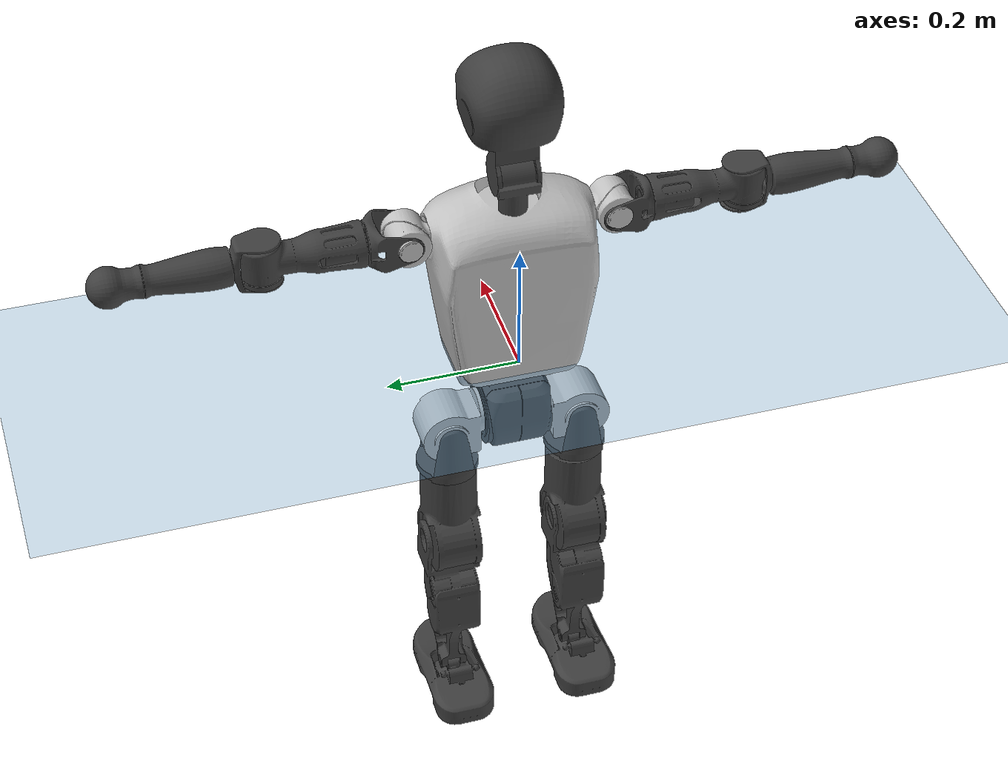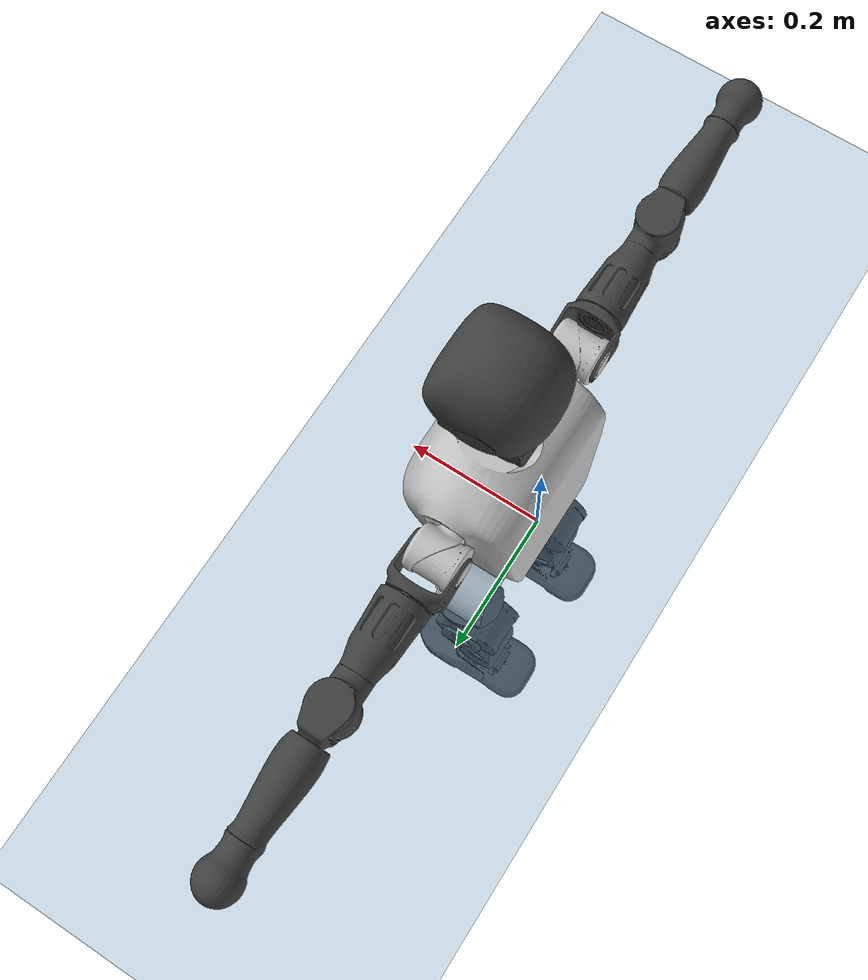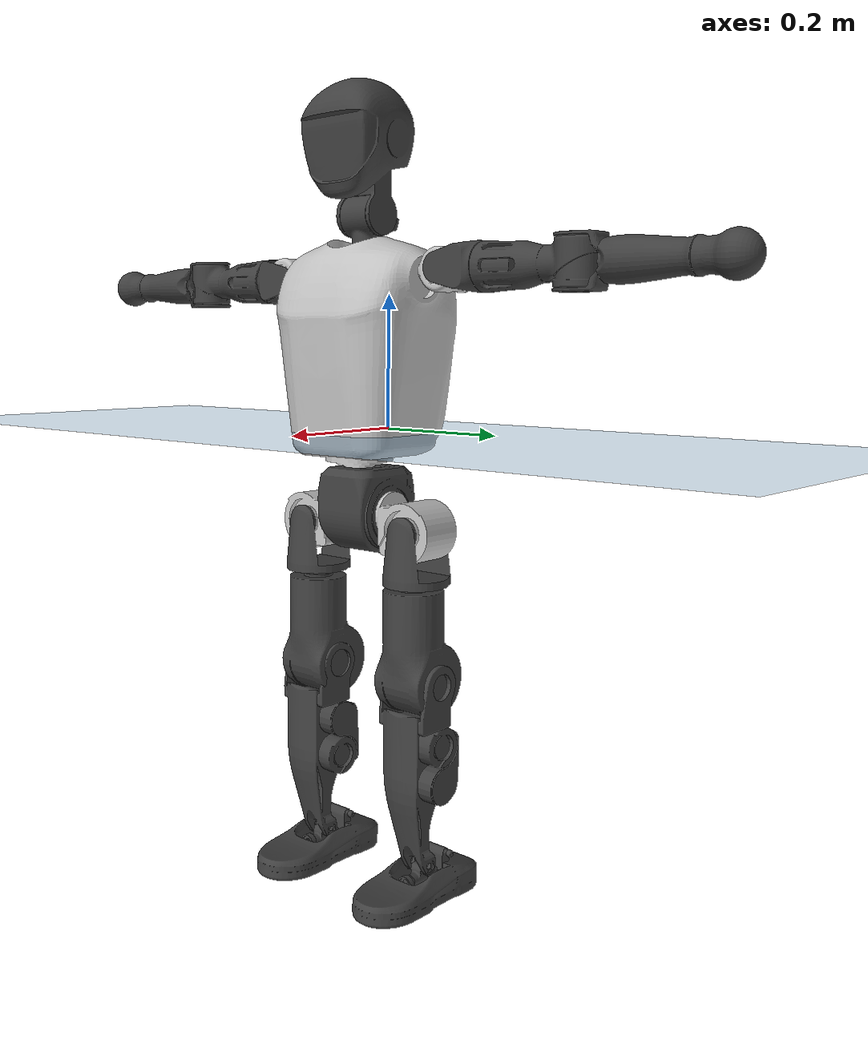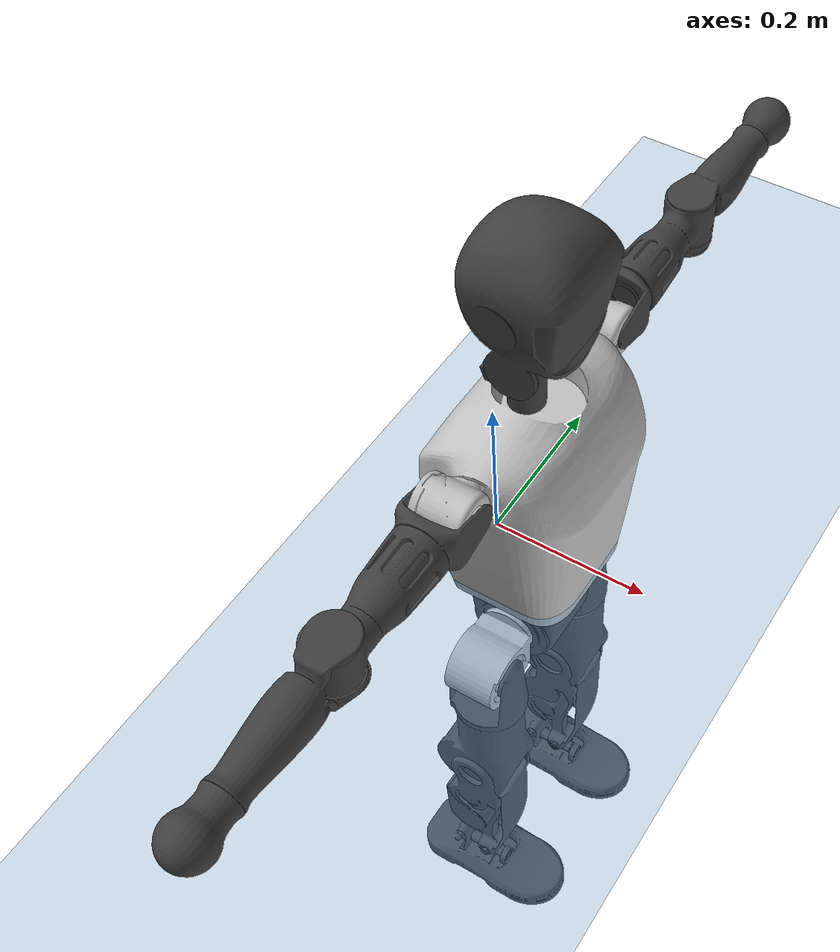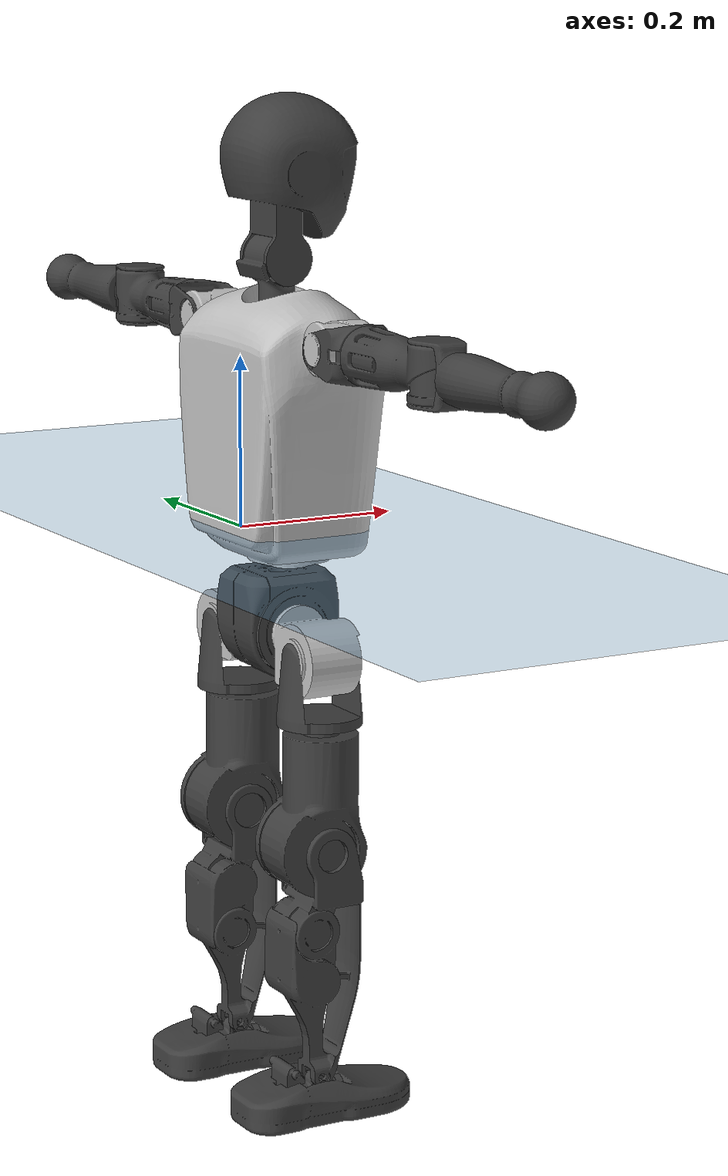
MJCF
<mujoco model="T1">
  <compiler angle="radian" assetdir="assets" balanceinertia="true" inertiafromgeom="false"/>

  <option timestep="0.005" density="1.2" viscosity="2e-05"/>

  <size nkey="1"/>

  <visual>
    <quality shadowsize="8192"/>
    <map shadowclip="0.5"/>
  </visual>

  <default>
    <default class="/">
      <joint armature="0.01" damping="0.01" frictionloss="0.1"/>
      <geom contype="0" conaffinity="0" group="1" solref="-1000 -80"/>
      <site size="0.01 0.005 0.005" group="5"/>
      <general forcelimited="true" biastype="affine" gainprm="25" biasprm="0 -25 -0.6"/>
      <default class="t1">
        <geom rgba="0.25 0.25 0.25 1"/>
        <default class="visual">
          <geom type="mesh" group="2"/>
        </default>
        <default class="collision">
          <geom group="3"/>
        </default>
        <default class="foot">
          <geom size="0.1115 0.05 0.015" type="box" condim="6" group="4" priority="1" solimp="0.015 1 0.015"/>
        </default>
        <default class="reward_collision_sphere">
          <geom group="5" rgba="1 0 0 1"/>
        </default>
      </default>
    </default>
  </default>

  <asset>
    <texture type="skybox" colorspace="auto" name="//unnamed_texture_0" builtin="gradient" rgb1="0.95 0.95 0.95" rgb2="0.95 0.95 0.95" width="100" height="600"/>
    <texture type="2d" colorspace="auto" name="texplane" builtin="checker" rgb1="0.345 0.575 0.748" rgb2="0.345 0.575 0.748" markrgb="1 1 1" width="512" height="512"/>
    <material name="MatPlane" class="/" texture="texplane" texuniform="true" texrepeat="2 2" specular="0.9"/>
    <mesh name="Trunk" class="/" file="Trunk.stl"/>
    <mesh name="H1" class="/" file="H1.stl"/>
    <mesh name="H2" class="/" file="H2.stl"/>
    <mesh name="AL1" class="/" file="AL1.stl"/>
    <mesh name="AL2" class="/" file="AL2.stl"/>
    <mesh name="AL3" class="/" file="AL3.stl"/>
    <mesh name="left_hand_link" class="/" file="left_hand_link.stl"/>
    <mesh name="AR1" class="/" file="AR1.stl"/>
    <mesh name="AR2" class="/" file="AR2.stl"/>
    <mesh name="AR3" class="/" file="AR3.stl"/>
    <mesh name="right_hand_link" class="/" file="right_hand_link.stl"/>
    <mesh name="Waist" class="/" file="Waist.stl"/>
    <mesh name="Hip_Pitch_Left" class="/" file="Hip_Pitch_Left.stl"/>
    <mesh name="Hip_Roll_Left" class="/" file="Hip_Roll_Left.stl"/>
    <mesh name="Hip_Yaw_Left" class="/" file="Hip_Yaw_Left.stl"/>
    <mesh name="Shank_Left" class="/" file="Shank_Left.stl"/>
    <mesh name="Ankle_Cross_Left" class="/" file="Ankle_Cross_Left.stl"/>
    <mesh name="left_foot_link" class="/" file="left_foot_link.stl"/>
    <mesh name="Hip_Pitch_Right" class="/" file="Hip_Pitch_Right.stl"/>
    <mesh name="Hip_Roll_Right" class="/" file="Hip_Roll_Right.stl"/>
    <mesh name="Hip_Yaw_Right" class="/" file="Hip_Yaw_Right.stl"/>
    <mesh name="Shank_Right" class="/" file="Shank_Right.stl"/>
    <mesh name="Ankle_Cross_Right" class="/" file="Ankle_Cross_Right.stl"/>
    <mesh name="right_foot_link" class="/" file="right_foot_link.stl"/>
  </asset>

  <worldbody>
    <geom name="floor" class="/" size="100 100 0.125" type="plane" group="0" material="MatPlane"/>
    <light name="toplight_shadow" class="/" pos="0 0 5" dir="0.0990148 0.0990148 -0.990148" type="directional" ambient="0.04 0.04 0.04" diffuse="0.55 0.55 0.55" specular="0.12 0.12 0.12"/>
    <light name="toplight_fill" class="/" pos="0 0 5" dir="0.0990148 0.0990148 -0.990148" type="directional" castshadow="false" ambient="0.04 0.04 0.04" diffuse="0.3 0.3 0.3" specular="0.08 0.08 0.08"/>
    <body name="trunk" childclass="t1" pos="0.00221655 -0.000169411 -0.000554736" quat="1 8.92528e-05 -0.000199317 -0.00047955">
      <inertial pos="0.040169 -0.000413606 0.107616" quat="0.999959 -2.36646e-05 -0.00903737 -0.000242096" mass="9.46257" diaginertia="0.0206485 0.0686493 0.0670589"/>
      <joint name="//unnamed_joint_0" type="free" armature="0" damping="0" frictionloss="0"/>
      <geom name="//unnamed_geom_1" class="visual" rgba="0.76 0.76 0.76 1" mesh="Trunk"/>
      <geom name="//unnamed_geom_2" class="collision" size="0.0687782 0.0917043 0.137556" pos="0.0442262 0 0.124352" type="box"/>
      <geom name="//unnamed_geom_3" class="reward_collision_sphere" size="0.10546" pos="0.0442262 0 0.103626"/>
      <geom name="//unnamed_geom_4" class="reward_collision_sphere" size="0.0137556" pos="0.0442262 0.08311 0"/>
      <geom name="//unnamed_geom_5" class="reward_collision_sphere" size="0.0137556" pos="0.0442262 -0.08311 0"/>
      <geom name="//unnamed_geom_6" class="reward_collision_sphere" size="0.0137556" pos="0.0442262 0.104621 0.186527"/>
      <geom name="//unnamed_geom_7" class="reward_collision_sphere" size="0.0137556" pos="0.0442262 -0.104621 0.186527"/>
      <site name="imu" pos="-0.0133613 -0.00377069 0.0125118" size="0.00917043"/>
      <camera name="track" pos="0 -1.95553 0" quat="0.707107 0.707107 0 0" mode="trackcom"/>
      <camera name="ego_camera" pos="0.0899265 0 0.43523" quat="-0.5 -0.5 0.5 0.5"/>
      <body name="H1" pos="0.04343 -0.00284953 0.249237" quat="1 0.000121375 0.000266996 -0.000120491">
        <inertial pos="-0.00309819 -0.0023685 0.0583081" quat="0.758597 -0.00339675 0.00495276 0.651532" mass="0.351439" diaginertia="5.23835e-05 0.000192132 0.000176764"/>
        <joint name="AAHead_yaw" pos="0 0 0" axis="-0.0139999 -0.00136077 0.999901" range="-1.57338 1.56986" armature="0.0102954" damping="0.00535504" frictionloss="0.0990679"/>
        <geom name="//unnamed_geom_8" class="visual" mesh="H1"/>
        <body name="H2" pos="-0.00100671 -0.000582451 0.0635623" quat="0.999999 -0.000491619 -0.0012057 -0.000257609">
          <inertial pos="0.00461721 -0.00146244 0.101809" quat="0.988689 0.108102 -0.0727601 -0.0742605" mass="0.505961" diaginertia="0.00044278 0.00174158 0.00210834"/>
          <joint name="Head_pitch" pos="0 0 0" axis="9.30744e-05 -1 0.000531688" range="-1.2344 0.34981" armature="0.0101347" damping="0.00703876" frictionloss="0.0906096"/>
          <geom name="//unnamed_geom_9" class="visual" mesh="H2"/>
          <geom name="//unnamed_geom_10" class="collision" size="0.0733635" pos="0.00737103 0 0.113989"/>
          <geom name="//unnamed_geom_11" class="reward_collision_sphere" size="0.0825339" pos="0.0147421 0 0.103626"/>
        </body>
      </body>
      <body name="AL1" pos="0.0447793 0.107174 0.22908" quat="1 -2.88683e-06 0.000444802 -2.16142e-05">
        <inertial pos="-0.00293324 0.0465754 -0.00262092" quat="0.503653 0.493629 -0.506979 0.495617" mass="0.423598" diaginertia="0.000310646 0.00120438 0.000354502"/>
        <joint name="Left_Shoulder_Pitch" pos="0 0 0" axis="-0.00727728 0.999946 0.00740441" stiffness="0.0135528" range="-3.28711 1.21316" armature="0.0101185" damping="0.00839126" frictionloss="0.0809168"/>
        <geom name="//unnamed_geom_12" class="visual" rgba="0.76 0.76 0.76 1" mesh="AL1"/>
        <body name="AL2" pos="-0.000745914 0.0494908 0.00240275" quat="1 -3.10979e-05 -0.000272866 -0.000215245">
          <inertial pos="0.00298741 0.0377887 0.00129618" quat="0.487722 0.511956 -0.488135 0.511618" mass="0.123375" diaginertia="9.32035e-05 0.000328934 0.000212749"/>
          <joint name="Left_Shoulder_Roll" pos="0 0 0" axis="-0.999999 0.00116117 8.42773e-05" range="-1.5278 1.68349" armature="0.00915791" damping="0.0189544" frictionloss="0.0956484"/>
          <geom name="//unnamed_geom_13" class="visual" mesh="AL2"/>
          <body name="AL3" pos="0.00318893 0.0590692 -0.00113725" quat="0.999999 -0.000473927 0.00103898 0.000229146">
            <inertial pos="-0.00021132 0.0824705 0.00257415" quat="0.697313 0.716756 0.000570645 0.00402876" mass="0.791921" diaginertia="0.00287629 0.0113385 0.000736241"/>
            <joint name="Left_Elbow_Pitch" pos="0 0 0" axis="0.00501323 -0.999984 0.00258748" range="-2.26056 2.32243" armature="0.0078545" damping="0" frictionloss="0.0893428"/>
            <geom name="//unnamed_geom_14" class="visual" mesh="AL3"/>
            <geom name="//unnamed_geom_15" class="collision" size="0.0275113 0.0687782" pos="0 0.0488882 0" quat="0.707105 0.707108 0 0" type="cylinder"/>
            <geom name="//unnamed_geom_16" class="reward_collision_sphere" size="0.0330136"/>
            <body name="left_hand_link" pos="0.00125881 0.144399 0.000286679" quat="0.999999 0.000992252 -0.000512193 0.000679481">
              <inertial pos="0.00220004 0.104517 0.00156086" quat="0.707512 0.706701 0.000322055 0.000792851" mass="0.247902" diaginertia="0.00179184 0.00733489 0.000250784"/>
              <joint name="Left_Elbow_Yaw" pos="0 0 0" axis="-0.000269068 -0.00676597 0.999977" range="-2.41309 -0.0387512" armature="0.0104267" damping="0.0249478" frictionloss="0.103864"/>
              <geom name="//unnamed_geom_17" class="visual" mesh="left_hand_link"/>
              <geom name="//unnamed_geom_18" class="collision" size="0.0275113 0.0802413" pos="0 0.127109 0" quat="0.707105 0.707108 0 0" type="cylinder"/>
              <geom name="//unnamed_geom_19" class="reward_collision_sphere" size="0.0458522"/>
              <geom name="//unnamed_geom_20" class="reward_collision_sphere" size="0.0320965" pos="0 0.107554 0"/>
              <geom name="//unnamed_geom_21" class="reward_collision_sphere" size="0.0320965" pos="0 0.210219 0"/>
            </body>
          </body>
        </body>
      </body>
      <body name="AR1" pos="0.0428963 -0.105904 0.226297" quat="1 0.000568161 8.30621e-05 0.000710647">
        <inertial pos="0.000242388 -0.0444938 8.23573e-05" quat="0.504187 0.495489 -0.504327 0.495923" mass="0.413275" diaginertia="0.000298265 0.00115885 0.000350141"/>
        <joint name="Right_Shoulder_Pitch" pos="0 0 0" axis="0.00430307 -0.999991 -7.82787e-05" stiffness="0.0147609" range="-1.22767 3.30469" armature="0.010128" damping="0" frictionloss="0.0834623"/>
        <geom name="//unnamed_geom_22" class="visual" rgba="0.76 0.76 0.76 1" mesh="AR1"/>
        <body name="AR2" pos="0.000830635 -0.0439231 -0.00281496" quat="1 -0.000184304 0.00032922 0.000430092">
          <inertial pos="0.000924038 -0.0345035 -0.00249439" quat="0.51135 0.486598 -0.514239 0.487136" mass="0.12776" diaginertia="8.97577e-05 0.000307109 0.000218862"/>
          <joint name="Right_Shoulder_Roll" pos="0 0 0" axis="-0.999819 0.0186566 0.00378627" range="-1.69063 1.59146" armature="0.00957306" damping="0.0214343" frictionloss="0.0910105"/>
          <geom name="//unnamed_geom_23" class="visual" mesh="AR2"/>
          <body name="AR3" pos="0.00124991 -0.0573172 2.9951e-05" quat="1 6.79753e-05 2.19424e-05 -6.21512e-05">
            <inertial pos="-0.00302278 -0.0833467 -0.000441066" quat="0.713179 0.700982 0.000578195 0.000887039" mass="0.784008" diaginertia="0.0028313 0.0114587 0.000764954"/>
            <joint name="Right_Elbow_Pitch" pos="0 0 0" axis="0.00298581 0.999978 0.00597052" range="-2.26746 2.22395" armature="0.0091488" damping="0.0112179" frictionloss="0.0793324"/>
            <geom name="//unnamed_geom_24" class="visual" mesh="AR3"/>
            <geom name="//unnamed_geom_25" class="collision" size="0.0275113 0.0687782" pos="0 -0.0488882 0" quat="0.707105 0.707108 0 0" type="cylinder"/>
            <geom name="//unnamed_geom_26" class="reward_collision_sphere" size="0.0330136"/>
            <body name="right_hand_link" pos="0.00095326 -0.141829 -0.000869362" quat="1 0.000122471 3.70963e-05 -0.000113173">
              <inertial pos="0.000103962 -0.106017 0.0035361" quat="0.706821 0.707393 -0.000112289 0.00022399" mass="0.25386" diaginertia="0.00177767 0.00710585 0.000257055"/>
              <joint name="Right_Elbow_Yaw" pos="0 0 0" axis="0.00264234 0.00157042 0.999995" stiffness="0.0092581" range="0.0373709 2.43854" armature="0.00905742" damping="0.00104676" frictionloss="0.0790969"/>
              <geom name="//unnamed_geom_27" class="visual" mesh="right_hand_link"/>
              <geom name="//unnamed_geom_28" class="collision" size="0.0275113 0.0802413" pos="0 -0.127109 0" quat="0.707105 0.707108 0 0" type="cylinder"/>
              <geom name="//unnamed_geom_29" class="reward_collision_sphere" size="0.0458522"/>
              <geom name="//unnamed_geom_30" class="reward_collision_sphere" size="0.0320965" pos="0 -0.107554 0"/>
              <geom name="//unnamed_geom_31" class="reward_collision_sphere" size="0.0320965" pos="0 -0.210219 0"/>
            </body>
          </body>
        </body>
      </body>
      <body name="Waist" pos="0.0460443 -0.00107982 -0.119935" quat="1 0.000445897 -0.000258713 0.000374046">
        <inertial pos="0.00224963 -0.000514858 0.00754831" quat="0.982582 0.00606844 -0.18564 0.00582862" mass="1.93559" diaginertia="0.00120612 0.00469424 0.00585024"/>
        <joint name="Waist" pos="0 0 0" axis="0.00650696 -0.0131024 0.999893" stiffness="0.00183271" range="-1.60837 1.53252" armature="0.00927481" damping="0.0102465" frictionloss="0.079121"/>
        <geom name="//unnamed_geom_32" class="visual" mesh="Waist"/>
        <body name="Hip_Pitch_Left" pos="0.00101146 0.102194 -0.000147911" quat="1 5.621e-05 4.78615e-06 -0.000119974">
          <inertial pos="0.00130302 -0.0101372 -0.0188414" quat="0.975363 0.220436 0.00817789 0.00278136" mass="0.787014" diaginertia="0.000384797 0.00135206 0.00155368"/>
          <joint name="Left_Hip_Pitch" pos="0 0 0" axis="0.00642601 0.999979 -2.2593e-05" stiffness="0.00729116" range="-1.80075 1.57591" armature="0.0101264" damping="0.0228681" frictionloss="0.0909986"/>
          <geom name="//unnamed_geom_33" class="visual" rgba="0.76 0.76 0.76 1" mesh="Hip_Pitch_Left"/>
          <body name="Hip_Roll_Left" pos="0.0027568 -0.00144393 -0.0215397" quat="0.999999 0.000614228 0.00139036 -2.74618e-05">
            <inertial pos="0.00356317 0.000309027 -0.0553347" quat="0.707692 -0.00628046 -0.00705808 0.706458" mass="0.277723" diaginertia="0.000355842 0.00130743 0.000587263"/>
            <joint name="Left_Hip_Roll" pos="0 0 0" axis="-0.999893 0.0109085 -0.00976024" range="-1.51368 0.221" armature="0.00837345" damping="0.00032046" frictionloss="0.0890452"/>
            <geom name="//unnamed_geom_34" class="visual" mesh="Hip_Roll_Left"/>
            <geom name="//unnamed_geom_35" class="reward_collision_sphere" size="0.0504374"/>
            <body name="Hip_Yaw_Left" pos="0.00226987 -0.00199213 -0.0838625" quat="0.999999 -0.000323432 0.00139417 -0.000201666">
              <inertial pos="-0.00758958 9.96192e-05 -0.0925418" quat="0.694793 -0.0328359 -0.0333294 0.717686" mass="1.68652" diaginertia="0.00586518 0.0230281 0.00312767"/>
              <joint name="Left_Hip_Yaw" pos="0 0 0" axis="-0.00241757 -0.000927687 -0.999997" range="-0.953252 1.06364" armature="0.00914782" damping="0.00539378" frictionloss="0.104121"/>
              <geom name="//unnamed_geom_36" class="visual" mesh="Hip_Yaw_Left"/>
              <geom name="//unnamed_geom_37" class="collision" size="0.0458522 0.0733635" type="cylinder"/>
              <body name="Shank_Left" pos="-0.0110594 0.00240164 -0.139798" quat="1 2.17372e-05 -3.76154e-05 -7.31306e-05">
                <inertial pos="-0.00699743 0.000395378 -0.129084" quat="0.997864 -0.00808428 -0.0160595 0.0628047" mass="1.30884" diaginertia="0.00760205 0.0319294 0.00229667"/>
                <joint name="Left_Knee_Pitch" pos="0 0 0" axis="-0.0128295 0.999917 0.00133831" range="0.0117922 2.3926" armature="0.00802352" damping="0.00894216" frictionloss="0.103961"/>
                <geom name="//unnamed_geom_38" class="visual" mesh="Shank_Left"/>
                <geom name="//unnamed_geom_39" class="collision" size="0.0458522 0.0687782" pos="0 0 -0.124352" type="cylinder"/>
                <geom name="//unnamed_geom_40" class="reward_collision_sphere" size="0.0596078"/>
                <body name="Ankle_Cross_Left" pos="-0.000912272 -0.000395833 -0.290341" quat="1 -0.000134495 0.000152566 -0.000301446">
                  <inertial pos="-0.00242388 -0.000692756 -0.00752131" quat="0.443981 0.552781 0.547601 0.44435" mass="0.0575416" diaginertia="6.52503e-06 2.32946e-05 1.36545e-05"/>
                  <joint name="Left_Ankle_Pitch" pos="0 0 0" axis="0.00805506 0.999937 0.00786289" range="-0.864481 0.303247" armature="0.0103837" damping="0.0103704" frictionloss="0.0871096"/>
                  <geom name="//unnamed_geom_41" class="visual" mesh="Ankle_Cross_Left"/>
                  <body name="left_foot_link" pos="0.0018636 -0.0014247 -0.0137693" quat="1 0.00024526 -0.000110204 -6.14879e-06">
                    <inertial pos="-0.00267248 0.00231081 -0.00936638" quat="0.00214327 0.617992 0.00320039 0.786175" mass="0.529658" diaginertia="0.000578753 0.00209025 0.00249806"/>
                    <joint name="Left_Ankle_Roll" pos="0 0 0" axis="-0.999986 -0.00507174 0.00168094" range="-0.405418 0.416197" armature="0.00926543" damping="0.00214365" frictionloss="0.0965905"/>
                    <geom name="//unnamed_geom_42" class="visual" mesh="left_foot_link"/>
                    <geom name="left_foot" class="foot" size="0.101206 0.0447827 0.0133719" pos="0.00737103 0 -0.0155439"/>
                    <geom name="//unnamed_geom_44" class="reward_collision_sphere" size="0.0476862" pos="0.00737103 0 -0.0155439"/>
                    <geom name="//unnamed_geom_45" class="reward_collision_sphere" size="0.0275113" pos="0.0700247 -0.0224886 -0.0155439"/>
                    <geom name="//unnamed_geom_46" class="reward_collision_sphere" size="0.0275113" pos="-0.0515972 -0.0224886 -0.0155439"/>
                    <site name="left_foot" class="foot" pos="0.00737103 0 -0.0155439" size="0.00917043"/>
                  </body>
                </body>
              </body>
            </body>
          </body>
        </body>
        <body name="Hip_Pitch_Right" pos="-0.0010446 -0.103153 -0.00194141" quat="1 0.000100479 0.000244461 0.000100819">
          <inertial pos="0.00132302 0.00735843 -0.0213999" quat="0.973801 -0.226878 0.015005 -0.00350846" mass="0.779195" diaginertia="0.000380473 0.00135379 0.0015154"/>
          <joint name="Right_Hip_Pitch" pos="0 0 0" axis="0.00181137 -0.999996 -0.00199408" range="-1.6154 1.85333" armature="0.00892298" damping="0.0215322" frictionloss="0.0793115"/>
          <geom name="//unnamed_geom_47" class="visual" rgba="0.76 0.76 0.76 1" mesh="Hip_Pitch_Right"/>
          <body name="Hip_Roll_Right" pos="0.00269 2.43535e-05 -0.0210393" quat="1 -9.32155e-05 9.70865e-06 -1.48231e-05">
            <inertial pos="0.00137389 -0.00310871 -0.0530056" quat="0.706396 -0.00548579 -0.00490981 0.707779" mass="0.287375" diaginertia="0.000367865 0.00130067 0.000614842"/>
            <joint name="Right_Hip_Roll" pos="0 0 0" axis="-0.9999 0.0117874 -0.00784426" range="-0.201446 1.58673" armature="0.00810848" damping="0.00212081" frictionloss="0.0870535"/>
            <geom name="//unnamed_geom_48" class="visual" mesh="Hip_Roll_Right"/>
            <geom name="//unnamed_geom_49" class="reward_collision_sphere" size="0.0504374"/>
            <body name="Hip_Yaw_Right" pos="-0.000585487 0.000504219 -0.0878906" quat="1 -0.000120629 -0.000271758 -0.000779913">
              <inertial pos="-0.00333465 0.00219648 -0.0946024" quat="0.709638 -0.0341726 -0.0432839 0.702405" mass="1.67801" diaginertia="0.00567034 0.0224597 0.00311082"/>
              <joint name="Right_Hip_Yaw" pos="0 0 0" axis="0.000591442 -0.00499264 -0.999987" stiffness="8.63452e-06" range="-1.00096 0.992008" armature="0.0097541" damping="0.012763" frictionloss="0.0922613"/>
              <geom name="//unnamed_geom_50" class="visual" mesh="Hip_Yaw_Right"/>
              <geom name="//unnamed_geom_51" class="collision" size="0.0458522 0.0733635" type="cylinder"/>
              <body name="Shank_Right" pos="-0.0083508 -0.00266816 -0.136609" quat="1 -0.000107006 -0.000191337 0.000176238">
                <inertial pos="-0.00674057 0.001687 -0.128476" quat="0.998753 0.00460933 -0.0347313 -0.035578" mass="1.40817" diaginertia="0.00729219 0.0298641 0.00228332"/>
                <joint name="Right_Knee_Pitch" pos="0 0 0" axis="0.0100199 -0.999949 0.00124834" range="-2.37393 0.00203702" armature="0.00919205" damping="0.00600431" frictionloss="0.0870921"/>
                <geom name="//unnamed_geom_52" class="visual" mesh="Shank_Right"/>
                <geom name="//unnamed_geom_53" class="collision" size="0.0458522 0.0687782" pos="0 0 -0.124352" type="cylinder"/>
                <geom name="//unnamed_geom_54" class="reward_collision_sphere" size="0.0596078"/>
                <body name="Ankle_Cross_Right" pos="-0.000726616 -0.00159405 -0.288624" quat="1 5.53737e-05 -9.9842e-05 -0.000140915">
                  <inertial pos="-0.00228836 -0.00265468 -0.00878059" quat="0.447135 0.539938 0.555221 0.447512" mass="0.0561342" diaginertia="6.29798e-06 2.14484e-05 1.30376e-05"/>
                  <joint name="Right_Ankle_Pitch" pos="0 0 0" axis="-0.0105863 -0.99994 0.0027971" range="-0.323557 0.868458" armature="0.0102468" damping="0" frictionloss="0.0898636"/>
                  <geom name="//unnamed_geom_55" class="visual" mesh="Ankle_Cross_Right"/>
                  <body name="right_foot_link" pos="0.000469102 -0.00155626 -0.00948077" quat="1 7.6489e-07 -1.41746e-07 5.02013e-07">
                    <inertial pos="0.000686849 0.000296735 -0.00669833" quat="-0.00563927 0.614526 -0.000172067 0.788876" mass="0.534079" diaginertia="0.00060683 0.00212833 0.00260796"/>
                    <joint name="Right_Ankle_Roll" pos="0 0 0" axis="-0.999991 -0.00296916 -0.00315062" stiffness="0.00216146" range="-0.448356 0.397275" armature="0.00952636" damping="0.0148835" frictionloss="0.0813862"/>
                    <geom name="//unnamed_geom_56" class="visual" mesh="right_foot_link"/>
                    <geom name="right_foot" class="foot" size="0.108236 0.0456492 0.0142561" pos="0.00737103 0 -0.0155439"/>
                    <geom name="//unnamed_geom_58" class="reward_collision_sphere" size="0.0366817"/>
                    <geom name="//unnamed_geom_59" class="reward_collision_sphere" size="0.0275113" pos="0.00737103 0 -0.0155439"/>
                    <geom name="//unnamed_geom_60" class="reward_collision_sphere" size="0.0275113" pos="0.0700247 0.0224886 -0.0155439"/>
                    <geom name="//unnamed_geom_61" class="reward_collision_sphere" size="0.0275113" pos="-0.0515972 0.0224886 -0.0155439"/>
                    <site name="right_foot" class="foot" pos="0.00737103 0 -0.0155439" size="0.00917043"/>
                  </body>
                </body>
              </body>
            </body>
          </body>
        </body>
      </body>
    </body>
  </worldbody>

  <contact>
    <pair class="/" geom1="floor" geom2="left_foot" name="//unnamed_contact_0"/>
    <pair class="/" geom1="floor" geom2="right_foot" name="//unnamed_contact_1"/>
  </contact>

  <actuator>
    <general name="AAHead_yaw" class="/" joint="AAHead_yaw" forcerange="-6.99323 6.99323" gainprm="23.2834" biasprm="0 -23.2834 -0.503143"/>
    <general name="Head_pitch" class="/" joint="Head_pitch" forcerange="-6.17921 6.17921" gainprm="23.2834" biasprm="0 -23.2834 -0.503143"/>
    <general name="Left_Shoulder_Pitch" class="/" joint="Left_Shoulder_Pitch" forcerange="-16.0729 16.0729" gainprm="23.2834" biasprm="0 -23.2834 -0.503143"/>
    <general name="Left_Shoulder_Roll" class="/" joint="Left_Shoulder_Roll" forcerange="-16.4197 16.4197" gainprm="23.2834" biasprm="0 -23.2834 -0.503143"/>
    <general name="Left_Elbow_Pitch" class="/" joint="Left_Elbow_Pitch" forcerange="-18.1088 18.1088" gainprm="23.2834" biasprm="0 -23.2834 -0.503143"/>
    <general name="Left_Elbow_Yaw" class="/" joint="Left_Elbow_Yaw" forcerange="-17.7076 17.7076" gainprm="23.2834" biasprm="0 -23.2834 -0.503143"/>
    <general name="Right_Shoulder_Pitch" class="/" joint="Right_Shoulder_Pitch" forcerange="-16.1068 16.1068" gainprm="23.2834" biasprm="0 -23.2834 -0.503143"/>
    <general name="Right_Shoulder_Roll" class="/" joint="Right_Shoulder_Roll" forcerange="-16.9491 16.9491" gainprm="23.2834" biasprm="0 -23.2834 -0.503143"/>
    <general name="Right_Elbow_Pitch" class="/" joint="Right_Elbow_Pitch" forcerange="-16.3406 16.3406" gainprm="23.2834" biasprm="0 -23.2834 -0.503143"/>
    <general name="Right_Elbow_Yaw" class="/" joint="Right_Elbow_Yaw" forcerange="-15.9854 15.9854" gainprm="23.2834" biasprm="0 -23.2834 -0.503143"/>
    <general name="Waist" class="/" joint="Waist" forcerange="-28.6817 28.6817" gainprm="23.2834" biasprm="0 -23.2834 -0.503143"/>
    <general name="Left_Hip_Pitch" class="/" joint="Left_Hip_Pitch" forcerange="-41.062 41.062" gainprm="23.2834" biasprm="0 -23.2834 -0.503143"/>
    <general name="Left_Hip_Roll" class="/" joint="Left_Hip_Roll" forcerange="-26.4029 26.4029" gainprm="23.2834" biasprm="0 -23.2834 -0.503143"/>
    <general name="Left_Hip_Yaw" class="/" joint="Left_Hip_Yaw" forcerange="-24.928 24.928" gainprm="23.2834" biasprm="0 -23.2834 -0.503143"/>
    <general name="Left_Knee_Pitch" class="/" joint="Left_Knee_Pitch" forcerange="-56.8134 56.8134" gainprm="23.2834" biasprm="0 -23.2834 -0.503143"/>
    <general name="Left_Ankle_Pitch" class="/" joint="Left_Ankle_Pitch" forcerange="-17.3564 17.3564" gainprm="23.2834" biasprm="0 -23.2834 -0.503143"/>
    <general name="Left_Ankle_Roll" class="/" joint="Left_Ankle_Roll" forcerange="-13.6717 13.6717" gainprm="23.2834" biasprm="0 -23.2834 -0.503143"/>
    <general name="Right_Hip_Pitch" class="/" joint="Right_Hip_Pitch" forcerange="-41.8311 41.8311" gainprm="23.2834" biasprm="0 -23.2834 -0.503143"/>
    <general name="Right_Hip_Roll" class="/" joint="Right_Hip_Roll" forcerange="-28.5553 28.5553" gainprm="23.2834" biasprm="0 -23.2834 -0.503143"/>
    <general name="Right_Hip_Yaw" class="/" joint="Right_Hip_Yaw" forcerange="-27.5471 27.5471" gainprm="23.2834" biasprm="0 -23.2834 -0.503143"/>
    <general name="Right_Knee_Pitch" class="/" joint="Right_Knee_Pitch" forcerange="-49.6339 49.6339" gainprm="23.2834" biasprm="0 -23.2834 -0.503143"/>
    <general name="Right_Ankle_Pitch" class="/" joint="Right_Ankle_Pitch" forcerange="-16.4697 16.4697" gainprm="23.2834" biasprm="0 -23.2834 -0.503143"/>
    <general name="Right_Ankle_Roll" class="/" joint="Right_Ankle_Roll" forcerange="-13.72 13.72" gainprm="23.2834" biasprm="0 -23.2834 -0.503143"/>
  </actuator>

  <sensor>
    <gyro site="imu" name="imu_angular_velocity"/>
    <velocimeter site="imu" name="imu_linear_velocity"/>
    <framelinvel objtype="site" objname="left_foot" name="left_foot_global_linear_velocity"/>
    <framelinvel objtype="site" objname="right_foot" name="right_foot_global_linear_velocity"/>
  </sensor>

  <keyframe>
    <key name="home" qpos="0 0 0.6385 1 0 0 0 0 0 0 1.4 0 -0.4 0 -1.4 0 0.4 0 -0.4 0 0 0.8 -0.4 0 0.4 0 0 -0.8 0.4 0"/>
  </keyframe>
</mujoco>
